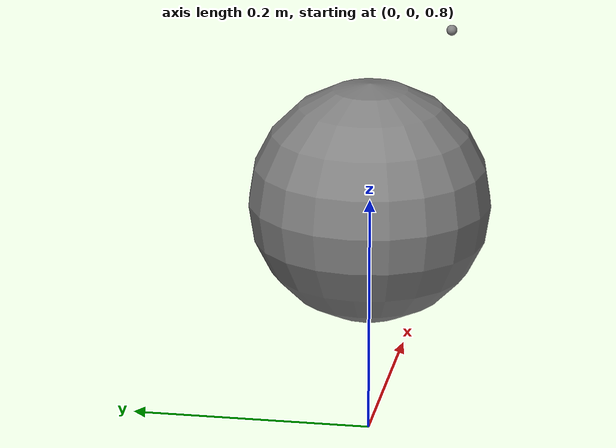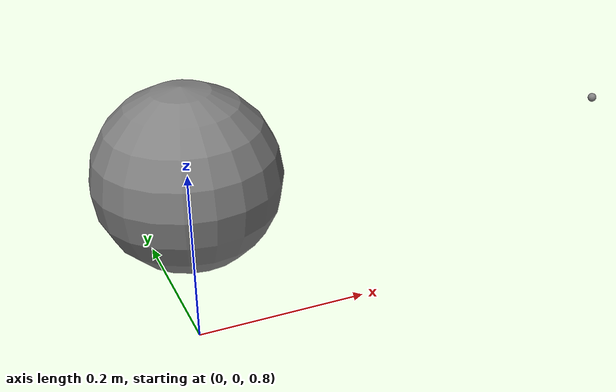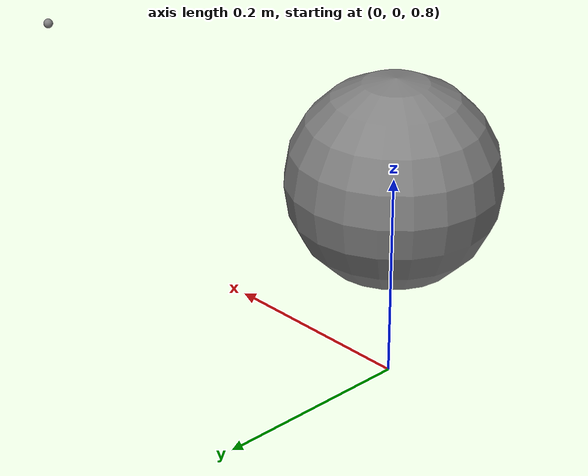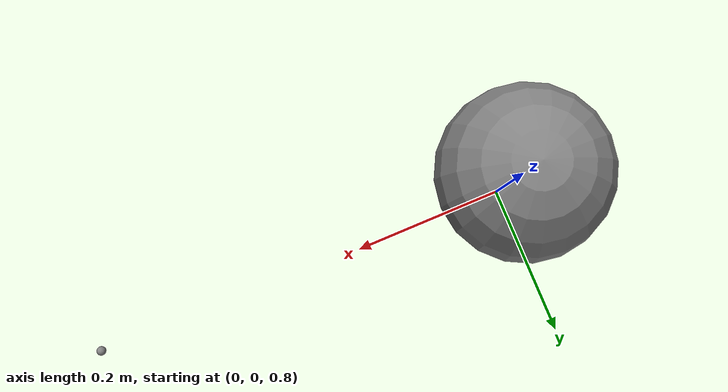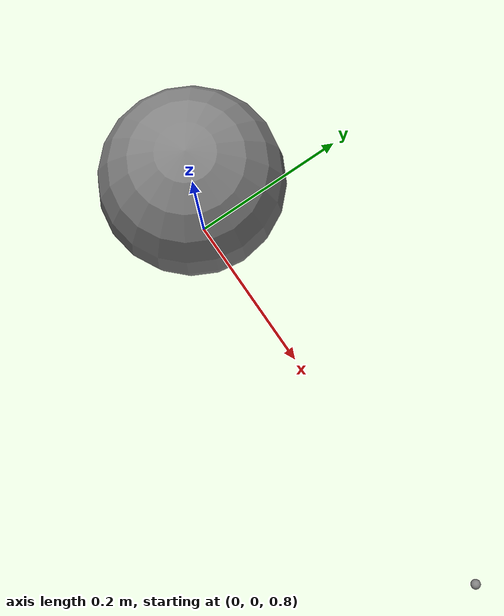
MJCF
<mujoco model="mode_a_trans_offset">
            <worldbody>
                <body name="b1" pos="0 0 1">
                    <joint name="j1" type="hinge" axis="0 1 0"/>
                    <geom type="sphere" size="0.1" mass="1.0"/>
                    <site name="thrust" pos="0.5 0 0"/>
                </body>
            </worldbody>
            <actuator>
                <general name="jet" site="thrust" gear="0 0 1 0 0 0" ctrlrange="-100 100"/>
            </actuator>
        </mujoco>
